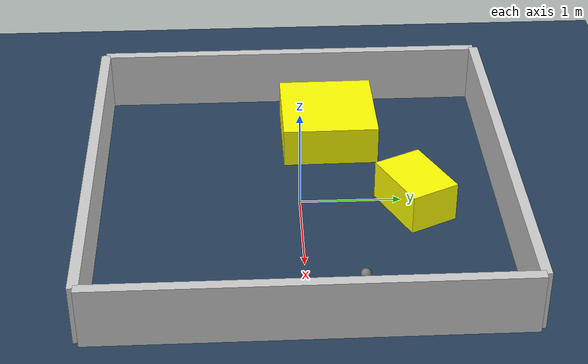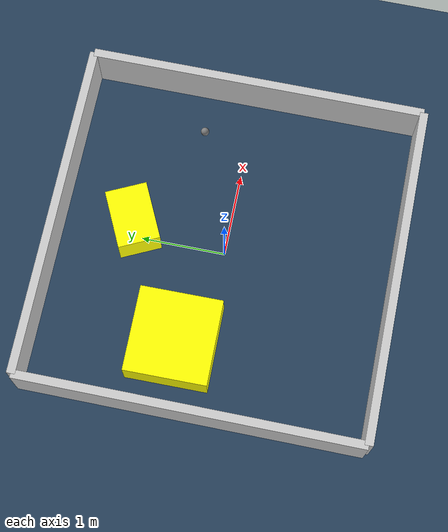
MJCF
<?xml version="1.0" ?>
<mujoco model="generated_environment">
  <option timestep="0.01" integrator="RK4" cone="elliptic"/>
  <default>
    <geom density="1"/>
  </default>
  <asset>
    <texture builtin="gradient" height="3072" rgb1="0.3 0.5 0.7" rgb2="0 0 0" type="skybox" width="512"/>
    <texture builtin="checker" height="300" mark="edge" markrgb="0.8 0.8 0.8" name="groundplane" rgb1="0.2 0.3 0.4" rgb2="0.1 0.2 0.3" type="2d" width="300"/>
    <material name="groundplane" reflectance="0.2" texrepeat="5 5" texture="groundplane" texuniform="true"/>
    <material name="robot" rgba="0.0 1.0 0.0 1"/>
  </asset>
  <worldbody>
    <light dir="0 0 -1" directional="true" pos="0 0 1.5"/>
    <geom condim="4" friction="1.0 0.005 0.001" material="groundplane" name="floor" size="0 0 0.05" type="plane"/>
    <body name="walls">
      <geom name="wall_1" condim="4" pos="-2.0 0.0 0.3" rgba="0.800000011920929 0.800000011920929 0.800000011920929 1.0" size="0.05 2.0 0.3" type="box"/>
      <geom name="wall_2" condim="4" pos="2.0 0.0 0.3" rgba="0.800000011920929 0.800000011920929 0.800000011920929 1.0" size="0.05 2.0 0.3" type="box"/>
      <geom name="wall_3" condim="4" pos="0.0 -2.0 0.3" rgba="0.800000011920929 0.800000011920929 0.800000011920929 1.0" size="2.0 0.05 0.3" type="box"/>
      <geom name="wall_4" condim="4" pos="0.0 2.0 0.3" rgba="0.800000011920929 0.800000011920929 0.800000011920929 1.0" size="2.0 0.05 0.3" type="box"/>
    </body>
    <body name="robot">
      <joint name="joint_x" type="slide" pos="0 0 0" axis="1 0 0"/>
      <joint name="joint_y" type="slide" pos="0 0 0" axis="0 1 0"/>
      <geom name="robot" type="sphere" pos="1.4189052410245324 0.5274224443195576 0.2" size="0.05" mass="5." friction="1.0 0.005 0.0001" condim="4"/>
      <site name="sensor_ball"/>
    </body>
    <body name="obstacle_1_movable">
      <geom name="obstacle_1_movable" condim="4" pos="0.14128356217297156 1.1236920440135165 0.2" euler="0 0 115.73290549062679" friction="1.0 0.005 0.001" rgba="1 1 0 1" size="0.24950695614522722 0.35193194043000936 0.2" type="box" mass="0.1"/>
      <joint type="free"/>
    </body>
    <body name="obstacle_2_movable">
      <geom name="obstacle_2_movable" condim="4" pos="-1.1727806941420673 0.35293856071699703 0.2" euler="0 0 270.5016780259656" friction="1.0 0.005 0.001" rgba="1 1 0 1" size="0.48502607360728894 0.5023044652025892 0.2" type="box" mass="0.1"/>
      <joint type="free"/>
    </body>
  </worldbody>
  <actuator>
    <motor name="actuator_x" joint="joint_x" gear="1" ctrlrange="-1 1"/>
    <motor name="actuator_y" joint="joint_y" gear="1" ctrlrange="-1 1"/>
  </actuator>
</mujoco>
